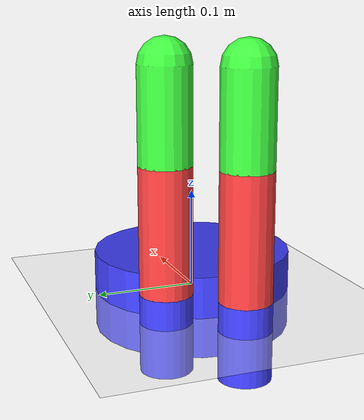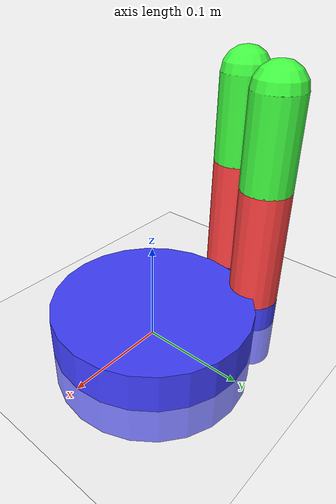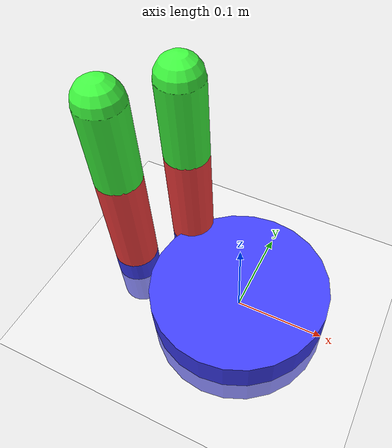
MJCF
<mujoco>
 <option gravity="0 0 0" />
  <worldbody>
    <light diffuse=".5 .5 .5" pos="0 0 10" dir="0 0 -1"/>
    <geom type="plane" size=".5 .5 1.0" rgba="1 1 1 0.8"/>

    <body name="palm" pos="0 0 0">
        <geom name="palm" pos="0 0 .0" type="cylinder" size=".10 .0400" rgba=".25 .25 1 1"/>
        <body name="finger1" pos="-.1350 0 .0275" euler="0 0 90">
            <geom name="fing1base" type="cylinder" pos="0 0 -.0375" size=".025 .0375" rgba=".25 .25 1 1"/>
            <body name="proxLink1" pos="0 0 0" euler="0 0 0" >
                <joint name="proxPitch1" axis="1 0 0" limited="true" range="0 120"/>
                <geom name="proxLink1" type="capsule" size=".025 .060" pos="0 0 .060" rgba="1 .25 .25 1"/>
                <body name="distLink1" pos="0 0 .12">
                    <joint name="distPitch1" axis="1 0 0" limited="true" range="0 120"/>
                    <geom name="distLink1" type="capsule" size=".025 .045" pos="0 0 .045" rgba=".25 1 .25 1"/>
                        <body name="ftip1" euler="0 0 -90" pos="0 0 .06">
                        </body>
                </body>
            </body>
        </body>
        <body name="finger2" pos="-.090 .060 0.0275" euler="0 0 70">
            <geom name="fing2base" type="cylinder" pos="0 0 -.0375" size=".025 .0375" rgba=".25 .25 1 1"/>
            <body name="proxLink2" pos="0 0 0" euler="0 0 0" >
                <joint name="proxPitch2" axis="1 0 0" limited="true" range="0 120"/>
                <geom name="proxLink2" type="capsule" size=".025 .060" pos="0 0 .060" rgba="1 .25 .25 1"/>
                <body name="distLink2" pos="0 0 .12">
                    <joint name="distPitch2" axis="1 0 0" limited="true" range="0 120"/>
                    <geom name="distLink2" type="capsule" size=".025 .045" pos="0 0 .045" rgba=".25 1 .25 1"/>
                        <body name="ftip2" euler="0 0 -90" pos="0 0 .06">
                        </body>
                </body>
            </body>
        </body>
    </body>
  </worldbody>
<contact>
    <exclude body1="palm" body2="proxLink1"/>
    <exclude body1="palm" body2="proxLink2"/>
</contact>
</mujoco>
